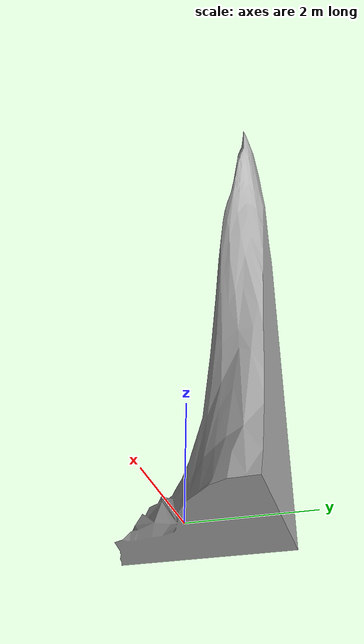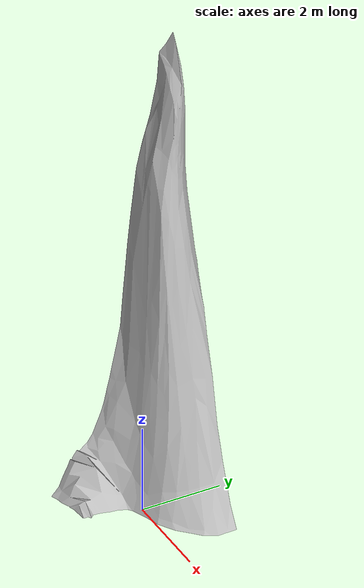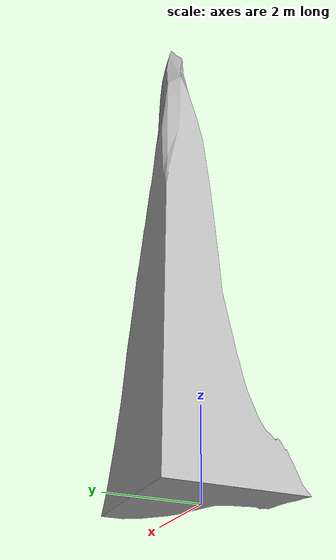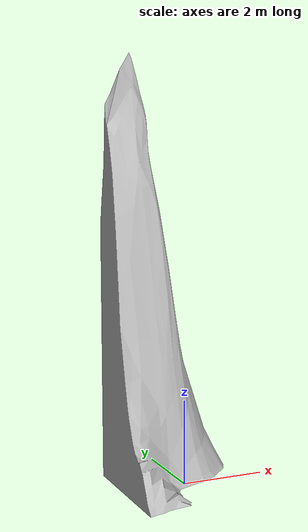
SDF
<?xml version="1.0"?>
<sdf version="1.5">
  <model name="bigrock_model">
    <static>
      true
    </static>
    <link name="bigrock_link">
      <inertial>
        <mass>0.390</mass>
        <inertia>
          <ixx>0.00058</ixx>
          <ixy>0</ixy>
          <ixz>0</ixz>
          <iyy>0.00058</iyy>
          <iyz>0</iyz>
          <izz>0.00019</izz>
        </inertia>
      </inertial>
      <visual name="bigrock_visual">
        <geometry>
          <mesh>
            <uri>model://bigrock/meshes/mountain_olaf.dae</uri>
          </mesh>
        </geometry>
      </visual>
    </link>
  </model>
</sdf>
